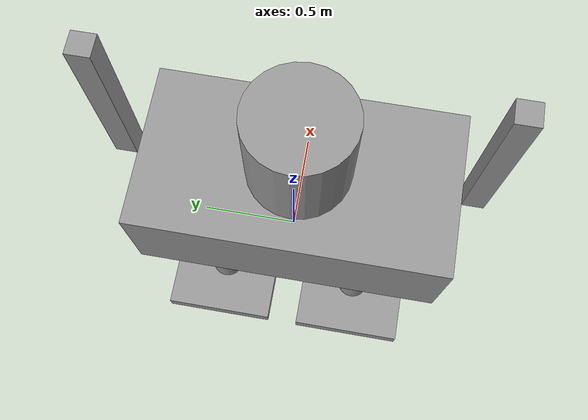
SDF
<?xml version='1.0'?>
<sdf version='1.7'>
  <model name='Humanoid'>
    <link name='link_0'>
      <inertial>
        <mass>1</mass>
        <inertia>
          <ixx>0.166667</ixx>
          <ixy>0</ixy>
          <ixz>0</ixz>
          <iyy>0.166667</iyy>
          <iyz>0</iyz>
          <izz>0.166667</izz>
        </inertia>
        <pose>0 0 0 0 -0 0</pose>
      </inertial>
      <pose>0 -0.425 -1.175 0 -0 0</pose>
      <gravity>1</gravity>
      <self_collide>0</self_collide>
      <kinematic>0</kinematic>
      <enable_wind>0</enable_wind>
      <visual name='visual'>
        <pose>0 0 0 0 -0 0</pose>
        <geometry>
          <box>
            <size>0.7 0.7 0.1</size>
          </box>
        </geometry>
        <material>
          <lighting>1</lighting>
          <script>
            <uri>file://media/materials/scripts/gazebo.material</uri>
            <name>Gazebo/Grey</name>
          </script>
          <shader type='pixel'>
            <normal_map>__default__</normal_map>
          </shader>
          <ambient>0.3 0.3 0.3 1</ambient>
          <diffuse>0.7 0.7 0.7 1</diffuse>
          <specular>0.01 0.01 0.01 1</specular>
          <emissive>0 0 0 1</emissive>
        </material>
        <transparency>0</transparency>
        <cast_shadows>1</cast_shadows>
      </visual>
      <collision name='collision'>
        <laser_retro>0</laser_retro>
        <max_contacts>10</max_contacts>
        <pose>0 0 0 0 -0 0</pose>
        <geometry>
          <box>
            <size>0.7 0.7 0.1</size>
          </box>
        </geometry>
        <surface>
          <friction>
            <ode>
              <mu>1</mu>
              <mu2>1</mu2>
              <fdir1>0 0 0</fdir1>
              <slip1>0</slip1>
              <slip2>0</slip2>
            </ode>
            <torsional>
              <coefficient>1</coefficient>
              <patch_radius>0</patch_radius>
              <surface_radius>0</surface_radius>
              <use_patch_radius>1</use_patch_radius>
              <ode>
                <slip>0</slip>
              </ode>
            </torsional>
          </friction>
          <bounce>
            <restitution_coefficient>0</restitution_coefficient>
            <threshold>1e+06</threshold>
          </bounce>
          <contact>
            <collide_without_contact>0</collide_without_contact>
            <collide_without_contact_bitmask>1</collide_without_contact_bitmask>
            <collide_bitmask>1</collide_bitmask>
            <ode>
              <soft_cfm>0</soft_cfm>
              <soft_erp>0.2</soft_erp>
              <kp>1e+13</kp>
              <kd>1</kd>
              <max_vel>0.01</max_vel>
              <min_depth>0</min_depth>
            </ode>
            <bullet>
              <split_impulse>1</split_impulse>
              <split_impulse_penetration_threshold>-0.01</split_impulse_penetration_threshold>
              <soft_cfm>0</soft_cfm>
              <soft_erp>0.2</soft_erp>
              <kp>1e+13</kp>
              <kd>1</kd>
            </bullet>
          </contact>
        </surface>
      </collision>
    </link>
    <link name='link_0_clone'>
      <inertial>
        <mass>1</mass>
        <inertia>
          <ixx>0.166667</ixx>
          <ixy>0</ixy>
          <ixz>0</ixz>
          <iyy>0.166667</iyy>
          <iyz>0</iyz>
          <izz>0.166667</izz>
        </inertia>
        <pose>0 0 0 0 -0 0</pose>
      </inertial>
      <pose>0 0.475 -1.175 0 -0 0</pose>
      <gravity>1</gravity>
      <self_collide>0</self_collide>
      <kinematic>0</kinematic>
      <enable_wind>0</enable_wind>
      <visual name='visual'>
        <pose>0 0 0 0 -0 0</pose>
        <geometry>
          <box>
            <size>0.7 0.7 0.1</size>
          </box>
        </geometry>
        <material>
          <lighting>1</lighting>
          <script>
            <uri>file://media/materials/scripts/gazebo.material</uri>
            <name>Gazebo/Grey</name>
          </script>
          <shader type='pixel'>
            <normal_map>__default__</normal_map>
          </shader>
          <ambient>0.3 0.3 0.3 1</ambient>
          <diffuse>0.7 0.7 0.7 1</diffuse>
          <specular>0.01 0.01 0.01 1</specular>
          <emissive>0 0 0 1</emissive>
        </material>
        <transparency>0</transparency>
        <cast_shadows>1</cast_shadows>
      </visual>
      <collision name='collision'>
        <laser_retro>0</laser_retro>
        <max_contacts>10</max_contacts>
        <pose>0 0 0 0 -0 0</pose>
        <geometry>
          <box>
            <size>0.7 0.7 0.1</size>
          </box>
        </geometry>
        <surface>
          <friction>
            <ode>
              <mu>1</mu>
              <mu2>1</mu2>
              <fdir1>0 0 0</fdir1>
              <slip1>0</slip1>
              <slip2>0</slip2>
            </ode>
            <torsional>
              <coefficient>1</coefficient>
              <patch_radius>0</patch_radius>
              <surface_radius>0</surface_radius>
              <use_patch_radius>1</use_patch_radius>
              <ode>
                <slip>0</slip>
              </ode>
            </torsional>
          </friction>
          <bounce>
            <restitution_coefficient>0</restitution_coefficient>
            <threshold>1e+06</threshold>
          </bounce>
          <contact>
            <collide_without_contact>0</collide_without_contact>
            <collide_without_contact_bitmask>1</collide_without_contact_bitmask>
            <collide_bitmask>1</collide_bitmask>
            <ode>
              <soft_cfm>0</soft_cfm>
              <soft_erp>0.2</soft_erp>
              <kp>1e+13</kp>
              <kd>1</kd>
              <max_vel>0.01</max_vel>
              <min_depth>0</min_depth>
            </ode>
            <bullet>
              <split_impulse>1</split_impulse>
              <split_impulse_penetration_threshold>-0.01</split_impulse_penetration_threshold>
              <soft_cfm>0</soft_cfm>
              <soft_erp>0.2</soft_erp>
              <kp>1e+13</kp>
              <kd>1</kd>
            </bullet>
          </contact>
        </surface>
      </collision>
    </link>
    <link name='link_1'>
      <inertial>
        <mass>1</mass>
        <inertia>
          <ixx>0.145833</ixx>
          <ixy>0</ixy>
          <ixz>0</ixz>
          <iyy>0.145833</iyy>
          <iyz>0</iyz>
          <izz>0.125</izz>
        </inertia>
        <pose>0 0 0 0 -0 0</pose>
      </inertial>
      <pose>0 0.475 -0.425 0 -0 0</pose>
      <gravity>1</gravity>
      <self_collide>0</self_collide>
      <kinematic>0</kinematic>
      <enable_wind>0</enable_wind>
      <visual name='visual'>
        <pose>0 0 0 0 -0 0</pose>
        <geometry>
          <cylinder>
            <radius>0.1</radius>
            <length>1.4</length>
          </cylinder>
        </geometry>
        <material>
          <lighting>1</lighting>
          <script>
            <uri>file://media/materials/scripts/gazebo.material</uri>
            <name>Gazebo/Grey</name>
          </script>
          <shader type='pixel'>
            <normal_map>__default__</normal_map>
          </shader>
          <ambient>0.3 0.3 0.3 1</ambient>
          <diffuse>0.7 0.7 0.7 1</diffuse>
          <specular>0.01 0.01 0.01 1</specular>
          <emissive>0 0 0 1</emissive>
        </material>
        <transparency>0</transparency>
        <cast_shadows>1</cast_shadows>
      </visual>
      <collision name='collision'>
        <laser_retro>0</laser_retro>
        <max_contacts>10</max_contacts>
        <pose>0 0 0 0 -0 0</pose>
        <geometry>
          <cylinder>
            <radius>0.1</radius>
            <length>1.4</length>
          </cylinder>
        </geometry>
        <surface>
          <friction>
            <ode>
              <mu>1</mu>
              <mu2>1</mu2>
              <fdir1>0 0 0</fdir1>
              <slip1>0</slip1>
              <slip2>0</slip2>
            </ode>
            <torsional>
              <coefficient>1</coefficient>
              <patch_radius>0</patch_radius>
              <surface_radius>0</surface_radius>
              <use_patch_radius>1</use_patch_radius>
              <ode>
                <slip>0</slip>
              </ode>
            </torsional>
          </friction>
          <bounce>
            <restitution_coefficient>0</restitution_coefficient>
            <threshold>1e+06</threshold>
          </bounce>
          <contact>
            <collide_without_contact>0</collide_without_contact>
            <collide_without_contact_bitmask>1</collide_without_contact_bitmask>
            <collide_bitmask>1</collide_bitmask>
            <ode>
              <soft_cfm>0</soft_cfm>
              <soft_erp>0.2</soft_erp>
              <kp>1e+13</kp>
              <kd>1</kd>
              <max_vel>0.01</max_vel>
              <min_depth>0</min_depth>
            </ode>
            <bullet>
              <split_impulse>1</split_impulse>
              <split_impulse_penetration_threshold>-0.01</split_impulse_penetration_threshold>
              <soft_cfm>0</soft_cfm>
              <soft_erp>0.2</soft_erp>
              <kp>1e+13</kp>
              <kd>1</kd>
            </bullet>
          </contact>
        </surface>
      </collision>
    </link>
    <link name='link_1_clone'>
      <inertial>
        <mass>1</mass>
        <inertia>
          <ixx>0.145833</ixx>
          <ixy>0</ixy>
          <ixz>0</ixz>
          <iyy>0.145833</iyy>
          <iyz>0</iyz>
          <izz>0.125</izz>
        </inertia>
        <pose>0 0 0 0 -0 0</pose>
      </inertial>
      <pose>0 -0.425 -0.425 0 -0 0</pose>
      <gravity>1</gravity>
      <self_collide>0</self_collide>
      <kinematic>0</kinematic>
      <enable_wind>0</enable_wind>
      <visual name='visual'>
        <pose>0 0 0 0 -0 0</pose>
        <geometry>
          <cylinder>
            <radius>0.1</radius>
            <length>1.4</length>
          </cylinder>
        </geometry>
        <material>
          <lighting>1</lighting>
          <script>
            <uri>file://media/materials/scripts/gazebo.material</uri>
            <name>Gazebo/Grey</name>
          </script>
          <shader type='pixel'>
            <normal_map>__default__</normal_map>
          </shader>
          <ambient>0.3 0.3 0.3 1</ambient>
          <diffuse>0.7 0.7 0.7 1</diffuse>
          <specular>0.01 0.01 0.01 1</specular>
          <emissive>0 0 0 1</emissive>
        </material>
        <transparency>0</transparency>
        <cast_shadows>1</cast_shadows>
      </visual>
      <collision name='collision'>
        <laser_retro>0</laser_retro>
        <max_contacts>10</max_contacts>
        <pose>0 0 0 0 -0 0</pose>
        <geometry>
          <cylinder>
            <radius>0.1</radius>
            <length>1.4</length>
          </cylinder>
        </geometry>
        <surface>
          <friction>
            <ode>
              <mu>1</mu>
              <mu2>1</mu2>
              <fdir1>0 0 0</fdir1>
              <slip1>0</slip1>
              <slip2>0</slip2>
            </ode>
            <torsional>
              <coefficient>1</coefficient>
              <patch_radius>0</patch_radius>
              <surface_radius>0</surface_radius>
              <use_patch_radius>1</use_patch_radius>
              <ode>
                <slip>0</slip>
              </ode>
            </torsional>
          </friction>
          <bounce>
            <restitution_coefficient>0</restitution_coefficient>
            <threshold>1e+06</threshold>
          </bounce>
          <contact>
            <collide_without_contact>0</collide_without_contact>
            <collide_without_contact_bitmask>1</collide_without_contact_bitmask>
            <collide_bitmask>1</collide_bitmask>
            <ode>
              <soft_cfm>0</soft_cfm>
              <soft_erp>0.2</soft_erp>
              <kp>1e+13</kp>
              <kd>1</kd>
              <max_vel>0.01</max_vel>
              <min_depth>0</min_depth>
            </ode>
            <bullet>
              <split_impulse>1</split_impulse>
              <split_impulse_penetration_threshold>-0.01</split_impulse_penetration_threshold>
              <soft_cfm>0</soft_cfm>
              <soft_erp>0.2</soft_erp>
              <kp>1e+13</kp>
              <kd>1</kd>
            </bullet>
          </contact>
        </surface>
      </collision>
    </link>
    <link name='link_3'>
      <inertial>
        <mass>1</mass>
        <inertia>
          <ixx>0.166667</ixx>
          <ixy>0</ixy>
          <ixz>0</ixz>
          <iyy>0.166667</iyy>
          <iyz>0</iyz>
          <izz>0.166667</izz>
        </inertia>
        <pose>0 0 0 0 -0 0</pose>
      </inertial>
      <pose>0 -0.025 0.525 0 -0 0</pose>
      <gravity>1</gravity>
      <self_collide>0</self_collide>
      <kinematic>0</kinematic>
      <enable_wind>0</enable_wind>
      <visual name='visual'>
        <pose>0 0 0 0 -0 0</pose>
        <geometry>
          <box>
            <size>0.8 1.5 0.5</size>
          </box>
        </geometry>
        <material>
          <lighting>1</lighting>
          <script>
            <uri>file://media/materials/scripts/gazebo.material</uri>
            <name>Gazebo/Grey</name>
          </script>
          <shader type='pixel'>
            <normal_map>__default__</normal_map>
          </shader>
          <ambient>0.3 0.3 0.3 1</ambient>
          <diffuse>0.7 0.7 0.7 1</diffuse>
          <specular>0.01 0.01 0.01 1</specular>
          <emissive>0 0 0 1</emissive>
        </material>
        <transparency>0</transparency>
        <cast_shadows>1</cast_shadows>
      </visual>
      <collision name='collision'>
        <laser_retro>0</laser_retro>
        <max_contacts>10</max_contacts>
        <pose>0 0 0 0 -0 0</pose>
        <geometry>
          <box>
            <size>0.8 1.5 0.5</size>
          </box>
        </geometry>
        <surface>
          <friction>
            <ode>
              <mu>1</mu>
              <mu2>1</mu2>
              <fdir1>0 0 0</fdir1>
              <slip1>0</slip1>
              <slip2>0</slip2>
            </ode>
            <torsional>
              <coefficient>1</coefficient>
              <patch_radius>0</patch_radius>
              <surface_radius>0</surface_radius>
              <use_patch_radius>1</use_patch_radius>
              <ode>
                <slip>0</slip>
              </ode>
            </torsional>
          </friction>
          <bounce>
            <restitution_coefficient>0</restitution_coefficient>
            <threshold>1e+06</threshold>
          </bounce>
          <contact>
            <collide_without_contact>0</collide_without_contact>
            <collide_without_contact_bitmask>1</collide_without_contact_bitmask>
            <collide_bitmask>1</collide_bitmask>
            <ode>
              <soft_cfm>0</soft_cfm>
              <soft_erp>0.2</soft_erp>
              <kp>1e+13</kp>
              <kd>1</kd>
              <max_vel>0.01</max_vel>
              <min_depth>0</min_depth>
            </ode>
            <bullet>
              <split_impulse>1</split_impulse>
              <split_impulse_penetration_threshold>-0.01</split_impulse_penetration_threshold>
              <soft_cfm>0</soft_cfm>
              <soft_erp>0.2</soft_erp>
              <kp>1e+13</kp>
              <kd>1</kd>
            </bullet>
          </contact>
        </surface>
      </collision>
    </link>
    <link name='link_4'>
      <inertial>
        <mass>1</mass>
        <inertia>
          <ixx>0.145833</ixx>
          <ixy>0</ixy>
          <ixz>0</ixz>
          <iyy>0.145833</iyy>
          <iyz>0</iyz>
          <izz>0.125</izz>
        </inertia>
        <pose>0 0 0 0 -0 0</pose>
      </inertial>
      <pose>0 -0.025 1.025 0 -0 0</pose>
      <gravity>1</gravity>
      <self_collide>0</self_collide>
      <kinematic>0</kinematic>
      <enable_wind>0</enable_wind>
      <visual name='visual'>
        <pose>0 0 0 0 -0 0</pose>
        <geometry>
          <cylinder>
            <radius>0.25</radius>
            <length>0.5</length>
          </cylinder>
        </geometry>
        <material>
          <lighting>1</lighting>
          <script>
            <uri>file://media/materials/scripts/gazebo.material</uri>
            <name>Gazebo/Grey</name>
          </script>
          <shader type='pixel'>
            <normal_map>__default__</normal_map>
          </shader>
          <ambient>0.3 0.3 0.3 1</ambient>
          <diffuse>0.7 0.7 0.7 1</diffuse>
          <specular>0.01 0.01 0.01 1</specular>
          <emissive>0 0 0 1</emissive>
        </material>
        <transparency>0</transparency>
        <cast_shadows>1</cast_shadows>
      </visual>
      <collision name='collision'>
        <laser_retro>0</laser_retro>
        <max_contacts>10</max_contacts>
        <pose>0 0 0 0 -0 0</pose>
        <geometry>
          <cylinder>
            <radius>0.25</radius>
            <length>0.5</length>
          </cylinder>
        </geometry>
        <surface>
          <friction>
            <ode>
              <mu>1</mu>
              <mu2>1</mu2>
              <fdir1>0 0 0</fdir1>
              <slip1>0</slip1>
              <slip2>0</slip2>
            </ode>
            <torsional>
              <coefficient>1</coefficient>
              <patch_radius>0</patch_radius>
              <surface_radius>0</surface_radius>
              <use_patch_radius>1</use_patch_radius>
              <ode>
                <slip>0</slip>
              </ode>
            </torsional>
          </friction>
          <bounce>
            <restitution_coefficient>0</restitution_coefficient>
            <threshold>1e+06</threshold>
          </bounce>
          <contact>
            <collide_without_contact>0</collide_without_contact>
            <collide_without_contact_bitmask>1</collide_without_contact_bitmask>
            <collide_bitmask>1</collide_bitmask>
            <ode>
              <soft_cfm>0</soft_cfm>
              <soft_erp>0.2</soft_erp>
              <kp>1e+13</kp>
              <kd>1</kd>
              <max_vel>0.01</max_vel>
              <min_depth>0</min_depth>
            </ode>
            <bullet>
              <split_impulse>1</split_impulse>
              <split_impulse_penetration_threshold>-0.01</split_impulse_penetration_threshold>
              <soft_cfm>0</soft_cfm>
              <soft_erp>0.2</soft_erp>
              <kp>1e+13</kp>
              <kd>1</kd>
            </bullet>
          </contact>
        </surface>
      </collision>
    </link>
    <link name='link_5'>
      <inertial>
        <mass>1</mass>
        <inertia>
          <ixx>0.166667</ixx>
          <ixy>0</ixy>
          <ixz>0</ixz>
          <iyy>0.166667</iyy>
          <iyz>0</iyz>
          <izz>0.166667</izz>
        </inertia>
        <pose>0 0 0.06 0 -0 0</pose>
      </inertial>
      <pose>0 0.775 0.825 0 -0 0</pose>
      <gravity>1</gravity>
      <self_collide>0</self_collide>
      <kinematic>0</kinematic>
      <enable_wind>0</enable_wind>
      <visual name='visual'>
        <pose>0 0 0.35 0 -0 0</pose>
        <geometry>
          <box>
            <size>0.1 0.1 0.8</size>
          </box>
        </geometry>
        <material>
          <lighting>1</lighting>
          <script>
            <uri>file://media/materials/scripts/gazebo.material</uri>
            <name>Gazebo/Grey</name>
          </script>
          <shader type='pixel'>
            <normal_map>__default__</normal_map>
          </shader>
          <ambient>0.3 0.3 0.3 1</ambient>
          <diffuse>0.7 0.7 0.7 1</diffuse>
          <specular>0.01 0.01 0.01 1</specular>
          <emissive>0 0 0 1</emissive>
        </material>
        <transparency>0</transparency>
        <cast_shadows>1</cast_shadows>
      </visual>
      <collision name='collision'>
        <laser_retro>0</laser_retro>
        <max_contacts>10</max_contacts>
        <pose>0 0 0.35 0 -0 0</pose>
        <geometry>
          <box>
            <size>0.1 0.1 0.8</size>
          </box>
        </geometry>
        <surface>
          <friction>
            <ode>
              <mu>1</mu>
              <mu2>1</mu2>
              <fdir1>0 0 0</fdir1>
              <slip1>0</slip1>
              <slip2>0</slip2>
            </ode>
            <torsional>
              <coefficient>1</coefficient>
              <patch_radius>0</patch_radius>
              <surface_radius>0</surface_radius>
              <use_patch_radius>1</use_patch_radius>
              <ode>
                <slip>0</slip>
              </ode>
            </torsional>
          </friction>
          <bounce>
            <restitution_coefficient>0</restitution_coefficient>
            <threshold>1e+06</threshold>
          </bounce>
          <contact>
            <collide_without_contact>0</collide_without_contact>
            <collide_without_contact_bitmask>1</collide_without_contact_bitmask>
            <collide_bitmask>1</collide_bitmask>
            <ode>
              <soft_cfm>0</soft_cfm>
              <soft_erp>0.2</soft_erp>
              <kp>1e+13</kp>
              <kd>1</kd>
              <max_vel>0.01</max_vel>
              <min_depth>0</min_depth>
            </ode>
            <bullet>
              <split_impulse>1</split_impulse>
              <split_impulse_penetration_threshold>-0.01</split_impulse_penetration_threshold>
              <soft_cfm>0</soft_cfm>
              <soft_erp>0.2</soft_erp>
              <kp>1e+13</kp>
              <kd>1</kd>
            </bullet>
          </contact>
        </surface>
      </collision>
    </link>
    <link name='link_5_clone'>
      <inertial>
        <mass>1</mass>
        <inertia>
          <ixx>0.166667</ixx>
          <ixy>0</ixy>
          <ixz>0</ixz>
          <iyy>0.166667</iyy>
          <iyz>0</iyz>
          <izz>0.166667</izz>
        </inertia>
        <pose>0 0 0.06 0 -0 0</pose>
      </inertial>
      <pose>0 -0.825 0.825 0 -0 0</pose>
      <gravity>1</gravity>
      <self_collide>0</self_collide>
      <kinematic>0</kinematic>
      <enable_wind>0</enable_wind>
      <visual name='visual'>
        <pose>0 0 0.35 0 -0 0</pose>
        <geometry>
          <box>
            <size>0.1 0.1 0.8</size>
          </box>
        </geometry>
        <material>
          <lighting>1</lighting>
          <script>
            <uri>file://media/materials/scripts/gazebo.material</uri>
            <name>Gazebo/Grey</name>
          </script>
          <shader type='pixel'>
            <normal_map>__default__</normal_map>
          </shader>
          <ambient>0.3 0.3 0.3 1</ambient>
          <diffuse>0.7 0.7 0.7 1</diffuse>
          <specular>0.01 0.01 0.01 1</specular>
          <emissive>0 0 0 1</emissive>
        </material>
        <transparency>0</transparency>
        <cast_shadows>1</cast_shadows>
      </visual>
      <collision name='collision'>
        <laser_retro>0</laser_retro>
        <max_contacts>10</max_contacts>
        <pose>0 0 0.35 0 -0 0</pose>
        <geometry>
          <box>
            <size>0.1 0.1 0.8</size>
          </box>
        </geometry>
        <surface>
          <friction>
            <ode>
              <mu>1</mu>
              <mu2>1</mu2>
              <fdir1>0 0 0</fdir1>
              <slip1>0</slip1>
              <slip2>0</slip2>
            </ode>
            <torsional>
              <coefficient>1</coefficient>
              <patch_radius>0</patch_radius>
              <surface_radius>0</surface_radius>
              <use_patch_radius>1</use_patch_radius>
              <ode>
                <slip>0</slip>
              </ode>
            </torsional>
          </friction>
          <bounce>
            <restitution_coefficient>0</restitution_coefficient>
            <threshold>1e+06</threshold>
          </bounce>
          <contact>
            <collide_without_contact>0</collide_without_contact>
            <collide_without_contact_bitmask>1</collide_without_contact_bitmask>
            <collide_bitmask>1</collide_bitmask>
            <ode>
              <soft_cfm>0</soft_cfm>
              <soft_erp>0.2</soft_erp>
              <kp>1e+13</kp>
              <kd>1</kd>
              <max_vel>0.01</max_vel>
              <min_depth>0</min_depth>
            </ode>
            <bullet>
              <split_impulse>1</split_impulse>
              <split_impulse_penetration_threshold>-0.01</split_impulse_penetration_threshold>
              <soft_cfm>0</soft_cfm>
              <soft_erp>0.2</soft_erp>
              <kp>1e+13</kp>
              <kd>1</kd>
            </bullet>
          </contact>
        </surface>
      </collision>
    </link>
    <joint name='link_0_JOINT_14' type='fixed'>
      <parent>link_0</parent>
      <child>link_1_clone</child>
      <pose>0 0 0 0 -0 0</pose>
      <physics>
        <ode>
          <limit>
            <cfm>0</cfm>
            <erp>0.2</erp>
          </limit>
          <suspension>
            <cfm>0</cfm>
            <erp>0.2</erp>
          </suspension>
        </ode>
      </physics>
    </joint>
    <joint name='link_0_clone_JOINT_15' type='fixed'>
      <parent>link_0_clone</parent>
      <child>link_1</child>
      <pose>0 0 0 0 -0 0</pose>
      <physics>
        <ode>
          <limit>
            <cfm>0</cfm>
            <erp>0.2</erp>
          </limit>
          <suspension>
            <cfm>0</cfm>
            <erp>0.2</erp>
          </suspension>
        </ode>
      </physics>
    </joint>
    <joint name='link_3_JOINT_11' type='revolute'>
      <parent>link_3</parent>
      <child>link_5</child>
      <pose>0 0 0 0 -0 0</pose>
      <axis>
        <xyz>0 1 0</xyz>
        <limit>
          <lower>-1.79769e+308</lower>
          <upper>1.79769e+308</upper>
          <effort>-1</effort>
          <velocity>-1</velocity>
        </limit>
        <dynamics>
          <spring_reference>0</spring_reference>
          <spring_stiffness>0</spring_stiffness>
          <damping>0</damping>
        </dynamics>
      </axis>
      <physics>
        <ode>
          <limit>
            <cfm>0</cfm>
            <erp>0.2</erp>
          </limit>
          <suspension>
            <cfm>0</cfm>
            <erp>0.2</erp>
          </suspension>
        </ode>
      </physics>
    </joint>
    <joint name='link_3_JOINT_13' type='revolute'>
      <parent>link_3</parent>
      <child>link_5_clone</child>
      <pose>0 0 0 0 -0 0</pose>
      <axis>
        <xyz>0 1 0</xyz>
        <limit>
          <lower>-1.79769e+308</lower>
          <upper>1.79769e+308</upper>
          <effort>-1</effort>
          <velocity>-1</velocity>
        </limit>
        <dynamics>
          <spring_reference>0</spring_reference>
          <spring_stiffness>0</spring_stiffness>
          <damping>0</damping>
        </dynamics>
      </axis>
      <physics>
        <ode>
          <limit>
            <cfm>0</cfm>
            <erp>0.2</erp>
          </limit>
          <suspension>
            <cfm>0</cfm>
            <erp>0.2</erp>
          </suspension>
        </ode>
      </physics>
    </joint>
    <joint name='link_3_JOINT_4' type='revolute'>
      <parent>link_3</parent>
      <child>link_4</child>
      <pose>0 0 0 0 -0 0</pose>
      <axis>
        <xyz>0 0 1</xyz>
        <limit>
          <lower>-1.79769e+308</lower>
          <upper>1.79769e+308</upper>
          <effort>-1</effort>
          <velocity>-1</velocity>
        </limit>
        <dynamics>
          <spring_reference>0</spring_reference>
          <spring_stiffness>0</spring_stiffness>
          <damping>0</damping>
        </dynamics>
      </axis>
      <physics>
        <ode>
          <limit>
            <cfm>0</cfm>
            <erp>0.2</erp>
          </limit>
          <suspension>
            <cfm>0</cfm>
            <erp>0.2</erp>
          </suspension>
        </ode>
      </physics>
    </joint>
    <joint name='link_3_JOINT_5' type='fixed'>
      <parent>link_3</parent>
      <child>link_1_clone</child>
      <pose>0 0 0 0 -0 0</pose>
      <physics>
        <ode>
          <limit>
            <cfm>0</cfm>
            <erp>0.2</erp>
          </limit>
          <suspension>
            <cfm>0</cfm>
            <erp>0.2</erp>
          </suspension>
        </ode>
      </physics>
    </joint>
    <joint name='link_3_JOINT_6' type='fixed'>
      <parent>link_3</parent>
      <child>link_1</child>
      <pose>0 0 0 0 -0 0</pose>
      <physics>
        <ode>
          <limit>
            <cfm>0</cfm>
            <erp>0.2</erp>
          </limit>
          <suspension>
            <cfm>0</cfm>
            <erp>0.2</erp>
          </suspension>
        </ode>
      </physics>
    </joint>
    <static>0</static>
    <allow_auto_disable>1</allow_auto_disable>
  </model>
</sdf>
